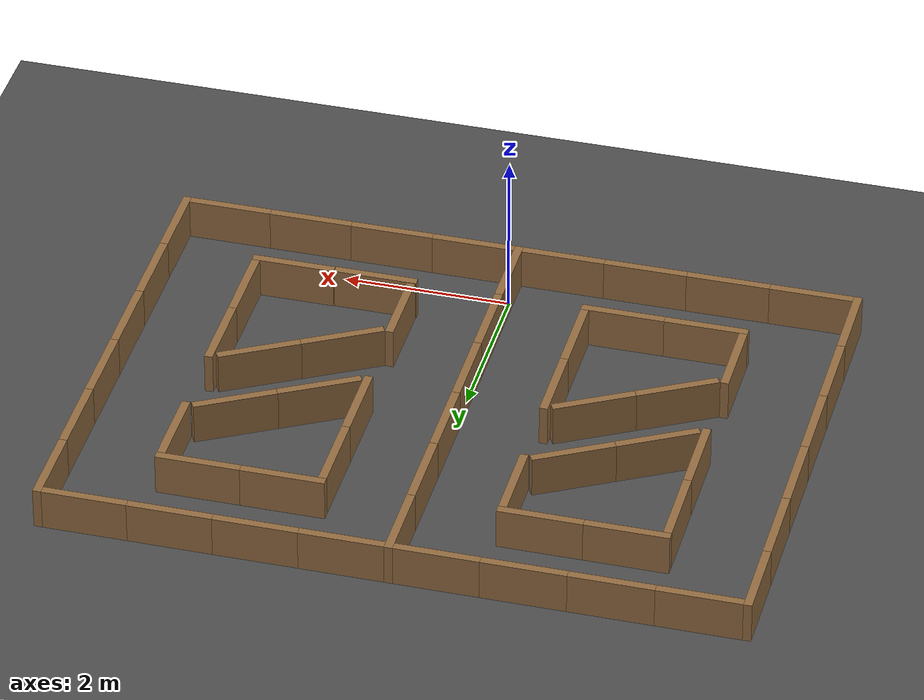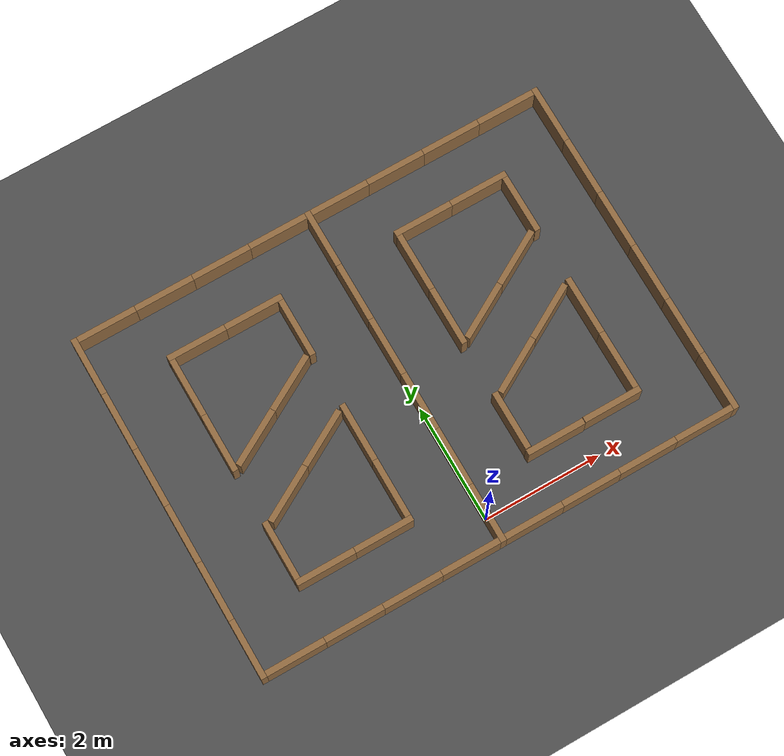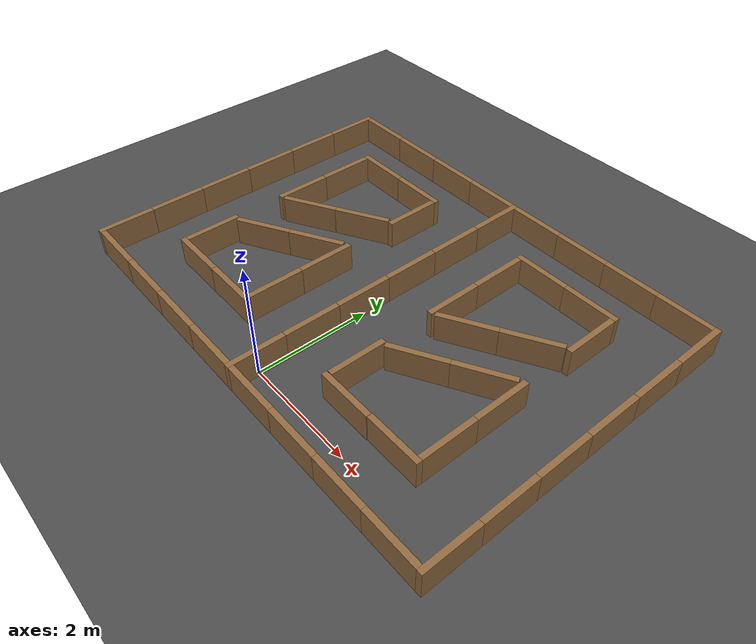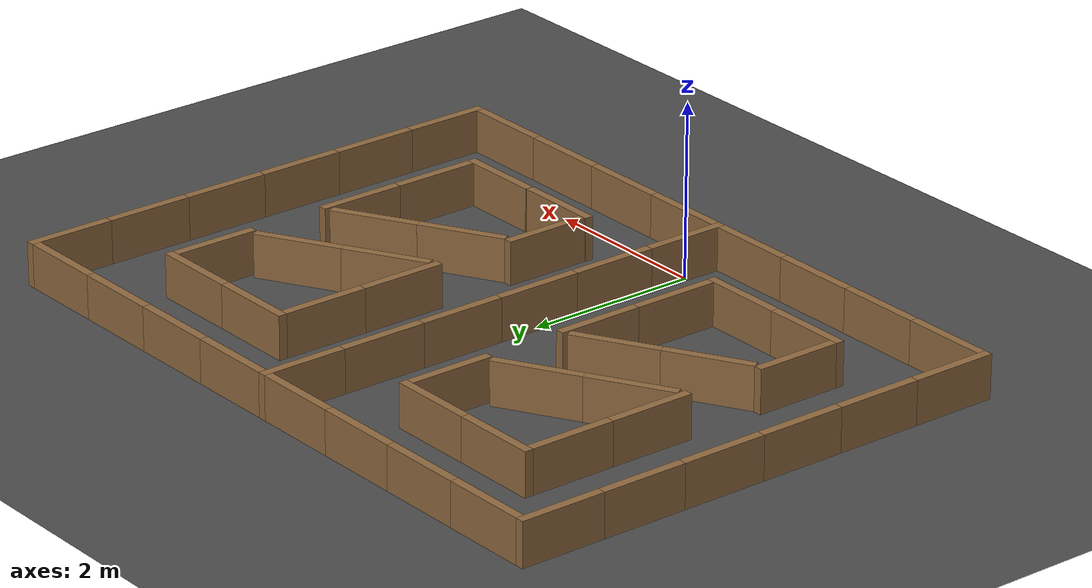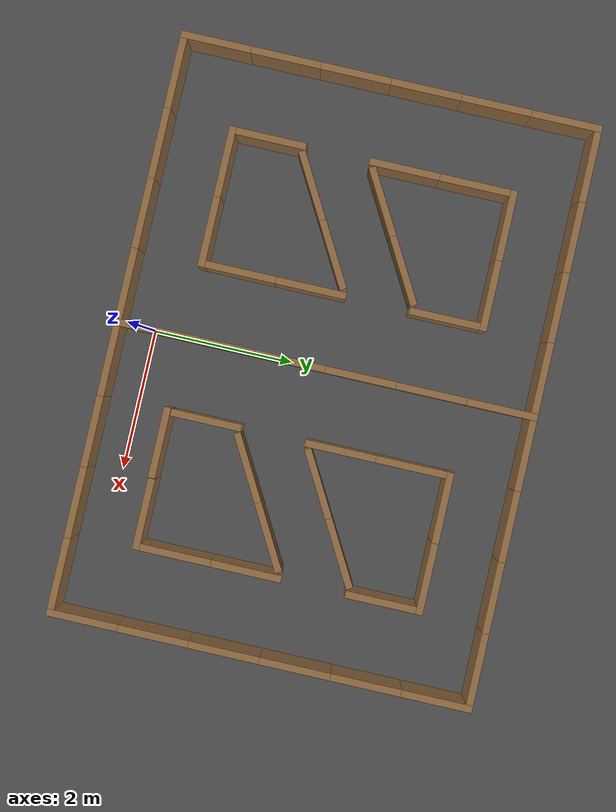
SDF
<sdf version="1.4">
 <world name="maskor_dome_World">
  <model name="papptown_wall8">
   <pose>0.55 5.45 0 0 -0 1.5708</pose>
   <static>1</static>
   <link name="link">
    <pose>0 0 0.25 0 -0 0</pose>
    <collision name="collision"><geometry><box><size>0.1 1 0.5</size></box></geometry></collision>
    <visual name="visual">
     <geometry><box><size>0.1 1 0.5</size></box></geometry>
     <material>
      <ambient>0.5 0.5 0.5 1</ambient>
      <diffuse>0.57 0.417 0.25 1</diffuse>
      <specular>0.1 0.1 0.1 1</specular>
     </material>
    </visual>
    <velocity_decay><linear>0</linear><angular>0</angular></velocity_decay>
   </link>
  </model>
  <light name="sun" type="directional">
   <pose>0 0 10 0 -0 0</pose>
   <diffuse>0.8 0.8 0.8 1</diffuse>
   <specular>0.2 0.2 0.2 1</specular>
   <attenuation>
    <range>1000</range>
    <constant>0.9</constant>
    <linear>0.01</linear>
    <quadratic>0.001</quadratic>
   </attenuation>
   <direction>-0.5 0.1 -0.9</direction>
  </light>
  <model name="papptown_wall1">
   <static>1</static>
   <link name="link">
    <pose>0 0 0.25 0 -0 0</pose>
    <collision name="collision"><geometry><box><size>0.1 1 0.5</size></box></geometry></collision>
    <visual name="visual">
     <geometry><box><size>0.1 1 0.5</size></box></geometry>
     <material>
      <ambient>0.5 0.5 0.5 1</ambient>
      <diffuse>0.57 0.417 0.25 1</diffuse>
      <specular>0.1 0.1 0.1 1</specular>
      <emissive>0 0 0 0</emissive>
     </material>
    </visual>
    <velocity_decay><linear>0</linear><angular>0</angular></velocity_decay>
   </link>
  </model>
  <model name="papptown_wall25">
   <pose>2.95 2.05 0 0 -0 0</pose>
   <static>1</static>
   <link name="link">
    <pose>0 0 0.25 0 -0 0</pose>
    <collision name="collision"><geometry><box><size>0.1 1 0.5</size></box></geometry></collision>
    <visual name="visual">
     <geometry><box><size>0.1 1 0.5</size></box></geometry>
     <material>
      <ambient>0.5 0.5 0.5 1</ambient>
      <diffuse>0.57 0.417 0.25 1</diffuse>
      <specular>0.1 0.1 0.1 1</specular>
      <emissive>0 0 0 0</emissive>
     </material>
    </visual>
    <velocity_decay><linear>0</linear><angular>0</angular></velocity_decay>
   </link>
  </model>
  <model name="papptown_wall2">
   <pose>0 1 0 0 -0 0</pose>
   <static>1</static>
   <link name="link">
    <pose>0 0 0.25 0 -0 0</pose>
    <collision name="collision"><geometry><box><size>0.1 1 0.5</size></box></geometry></collision>
    <visual name="visual">
     <geometry><box><size>0.1 1 0.5</size></box></geometry>
     <material>
      <ambient>0.5 0.5 0.5 1</ambient>
      <diffuse>0.57 0.417 0.25 1</diffuse>
      <specular>0.1 0.1 0.1 1</specular>
      <emissive>0 0 0 0</emissive>
     </material>
    </visual>
    <velocity_decay><linear>0</linear><angular>0</angular></velocity_decay>
   </link>
  </model>
  <model name="papptown_wall3">
   <pose>0 2 0 0 -0 0</pose>
   <static>1</static>
   <link name="link">
    <pose>0 0 0.25 0 -0 0</pose>
    <collision name="collision"><geometry><box><size>0.1 1 0.5</size></box></geometry></collision>
    <visual name="visual">
     <geometry><box><size>0.1 1 0.5</size></box></geometry>
     <material>
      <ambient>0.5 0.5 0.5 1</ambient>
      <diffuse>0.57 0.417 0.25 1</diffuse>
      <specular>0.1 0.1 0.1 1</specular>
      <emissive>0 0 0 0</emissive>
     </material>
    </visual>
    <velocity_decay><linear>0</linear><angular>0</angular></velocity_decay>
   </link>
  </model>
  <model name="papptown_wall4">
   <pose>0 3 0 0 -0 0</pose>
   <static>1</static>
   <link name="link">
    <pose>0 0 0.25 0 -0 0</pose>
    <collision name="collision"><geometry><box><size>0.1 1 0.5</size></box></geometry></collision>
    <visual name="visual">
     <geometry><box><size>0.1 1 0.5</size></box></geometry>
     <material>
      <ambient>0.5 0.5 0.5 1</ambient>
      <diffuse>0.57 0.417 0.25 1</diffuse>
      <specular>0.1 0.1 0.1 1</specular>
      <emissive>0 0 0 0</emissive>
     </material>
    </visual>
    <velocity_decay><linear>0</linear><angular>0</angular></velocity_decay>
   </link>
  </model>
  <model name="papptown_wall5">
   <pose>0 4 0 0 -0 0</pose>
   <static>1</static>
   <link name="link">
    <pose>0 0 0.25 0 -0 0</pose>
    <collision name="collision"><geometry><box><size>0.1 1 0.5</size></box></geometry></collision>
    <visual name="visual">
     <geometry><box><size>0.1 1 0.5</size></box></geometry>
     <material>
      <ambient>0.5 0.5 0.5 1</ambient>
      <diffuse>0.57 0.417 0.25 1</diffuse>
      <specular>0.1 0.1 0.1 1</specular>
      <emissive>0 0 0 0</emissive>
     </material>
    </visual>
    <velocity_decay><linear>0</linear><angular>0</angular></velocity_decay>
   </link>
  </model>
  <model name="papptown_wall6">
   <pose>0 5 0 0 -0 0</pose>
   <static>1</static>
   <link name="link">
    <pose>0 0 0.25 0 -0 0</pose>
    <collision name="collision"><geometry><box><size>0.1 1 0.5</size></box></geometry></collision>
    <visual name="visual">
     <geometry><box><size>0.1 1 0.5</size></box></geometry>
     <material>
      <ambient>0.5 0.5 0.5 1</ambient>
      <diffuse>0.57 0.417 0.25 1</diffuse>
      <specular>0.1 0.1 0.1 1</specular>
      <emissive>0 0 0 0</emissive>
     </material>
    </visual>
    <velocity_decay><linear>0</linear><angular>0</angular></velocity_decay>
   </link>
  </model>
  <model name="papptown_wall9">
   <pose>1.55 5.45 0 0 -0 1.5708</pose>
   <static>1</static>
   <link name="link">
    <pose>0 0 0.25 0 -0 0</pose>
    <collision name="collision"><geometry><box><size>0.1 1 0.5</size></box></geometry></collision>
    <visual name="visual">
     <geometry><box><size>0.1 1 0.5</size></box></geometry>
     <material>
      <ambient>0.5 0.5 0.5 1</ambient>
      <diffuse>0.57 0.417 0.25 1</diffuse>
      <specular>0.1 0.1 0.1 1</specular>
      <emissive>0 0 0 0</emissive>
     </material>
    </visual>
    <velocity_decay><linear>0</linear><angular>0</angular></velocity_decay>
   </link>
  </model>
  <model name="papptown_wall10">
   <pose>2.55 5.45 0 0 -0 1.5708</pose>
   <static>1</static>
   <link name="link">
    <pose>0 0 0.25 0 -0 0</pose>
    <collision name="collision"><geometry><box><size>0.1 1 0.5</size></box></geometry></collision>
    <visual name="visual">
     <geometry><box><size>0.1 1 0.5</size></box></geometry>
     <material>
      <ambient>0.5 0.5 0.5 1</ambient>
      <diffuse>0.57 0.417 0.25 1</diffuse>
      <specular>0.1 0.1 0.1 1</specular>
     </material>
    </visual>
    <velocity_decay><linear>0</linear><angular>0</angular></velocity_decay>
   </link>
  </model>
  <model name="papptown_wall11">
   <pose>3.55 5.45 0 0 -0 1.5708</pose>
   <static>1</static>
   <link name="link">
    <pose>0 0 0.25 0 -0 0</pose>
    <collision name="collision"><geometry><box><size>0.1 1 0.5</size></box></geometry></collision>
    <visual name="visual">
     <geometry><box><size>0.1 1 0.5</size></box></geometry>
     <material>
      <ambient>0.5 0.5 0.5 1</ambient>
      <diffuse>0.57 0.417 0.25 1</diffuse>
      <specular>0.1 0.1 0.1 1</specular>
      <emissive>0 0 0 0</emissive>
     </material>
    </visual>
    <velocity_decay><linear>0</linear><angular>0</angular></velocity_decay>
   </link>
  </model>
  <model name="papptown_wall13">
   <pose>4.1 5 0 0 -0 0</pose>
   <static>1</static>
   <link name="link">
    <pose>0 0 0.25 0 -0 0</pose>
    <collision name="collision"><geometry><box><size>0.1 1 0.5</size></box></geometry></collision>
    <visual name="visual">
     <geometry><box><size>0.1 1 0.5</size></box></geometry>
     <material>
      <ambient>0.5 0.5 0.5 1</ambient>
      <diffuse>0.57 0.417 0.25 1</diffuse>
      <specular>0.1 0.1 0.1 1</specular>
      <emissive>0 0 0 0</emissive>
     </material>
    </visual>
    <velocity_decay><linear>0</linear><angular>0</angular></velocity_decay>
   </link>
  </model>
  <model name="papptown_wall14">
   <pose>4.1 4 0 0 -0 0</pose>
   <static>1</static>
   <link name="link">
    <pose>0 0 0.25 0 -0 0</pose>
    <collision name="collision"><geometry><box><size>0.1 1 0.5</size></box></geometry></collision>
    <visual name="visual">
     <geometry><box><size>0.1 1 0.5</size></box></geometry>
     <material>
      <ambient>0.5 0.5 0.5 1</ambient>
      <diffuse>0.57 0.417 0.25 1</diffuse>
      <specular>0.1 0.1 0.1 1</specular>
      <emissive>0 0 0 0</emissive>
     </material>
    </visual>
    <velocity_decay><linear>0</linear><angular>0</angular></velocity_decay>
   </link>
  </model>
  <model name="papptown_wall15">
   <pose>4.1 3 0 0 -0 0</pose>
   <static>1</static>
   <link name="link">
    <pose>0 0 0.25 0 -0 0</pose>
    <collision name="collision"><geometry><box><size>0.1 1 0.5</size></box></geometry></collision>
    <visual name="visual">
     <geometry><box><size>0.1 1 0.5</size></box></geometry>
     <material>
      <ambient>0.5 0.5 0.5 1</ambient>
      <diffuse>0.57 0.417 0.25 1</diffuse>
      <specular>0.1 0.1 0.1 1</specular>
      <emissive>0 0 0 0</emissive>
     </material>
    </visual>
    <velocity_decay><linear>0</linear><angular>0</angular></velocity_decay>
   </link>
  </model>
  <model name="papptown_wall16">
   <pose>4.1 2 0 0 -0 0</pose>
   <static>1</static>
   <link name="link">
    <pose>0 0 0.25 0 -0 0</pose>
    <collision name="collision"><geometry><box><size>0.1 1 0.5</size></box></geometry></collision>
    <visual name="visual">
     <geometry><box><size>0.1 1 0.5</size></box></geometry>
     <material>
      <ambient>0.5 0.5 0.5 1</ambient>
      <diffuse>0.57 0.417 0.25 1</diffuse>
      <specular>0.1 0.1 0.1 1</specular>
      <emissive>0 0 0 0</emissive>
     </material>
    </visual>
    <velocity_decay><linear>0</linear><angular>0</angular></velocity_decay>
   </link>
  </model>
  <model name="papptown_wall17">
   <pose>4.1 1 0 0 -0 0</pose>
   <static>1</static>
   <link name="link">
    <pose>0 0 0.25 0 -0 0</pose>
    <collision name="collision"><geometry><box><size>0.1 1 0.5</size></box></geometry></collision>
    <visual name="visual">
     <geometry><box><size>0.1 1 0.5</size></box></geometry>
     <material>
      <ambient>0.5 0.5 0.5 1</ambient>
      <diffuse>0.57 0.417 0.25 1</diffuse>
      <specular>0.1 0.1 0.1 1</specular>
      <emissive>0 0 0 0</emissive>
     </material>
    </visual>
    <velocity_decay><linear>0</linear><angular>0</angular></velocity_decay>
   </link>
  </model>
  <model name="papptown_wall18">
   <pose>4.1 0 0 0 -0 0</pose>
   <static>1</static>
   <link name="link">
    <pose>0 0 0.25 0 -0 0</pose>
    <collision name="collision"><geometry><box><size>0.1 1 0.5</size></box></geometry></collision>
    <visual name="visual">
     <geometry><box><size>0.1 1 0.5</size></box></geometry>
     <material>
      <ambient>0.5 0.5 0.5 1</ambient>
      <diffuse>0.57 0.417 0.25 1</diffuse>
      <specular>0.1 0.1 0.1 1</specular>
      <emissive>0 0 0 0</emissive>
     </material>
    </visual>
    <velocity_decay><linear>0</linear><angular>0</angular></velocity_decay>
   </link>
  </model>
  <model name="papptown_wall21">
   <pose>1.55 -0.45 0 0 -0 1.5708</pose>
   <static>1</static>
   <link name="link">
    <pose>0 0 0.25 0 -0 0</pose>
    <collision name="collision"><geometry><box><size>0.1 1 0.5</size></box></geometry></collision>
    <visual name="visual">
     <geometry><box><size>0.1 1 0.5</size></box></geometry>
     <material>
      <ambient>0.5 0.5 0.5 1</ambient>
      <diffuse>0.57 0.417 0.25 1</diffuse>
      <specular>0.1 0.1 0.1 1</specular>
      <emissive>0 0 0 0</emissive>
     </material>
    </visual>
    <velocity_decay><linear>0</linear><angular>0</angular></velocity_decay>
   </link>
  </model>
  <model name="papptown_wall19">
   <pose>3.55 -0.45 0 0 -0 1.5708</pose>
   <static>1</static>
   <link name="link">
    <pose>0 0 0.25 0 -0 0</pose>
    <collision name="collision"><geometry><box><size>0.1 1 0.5</size></box></geometry></collision>
    <visual name="visual">
     <geometry><box><size>0.1 1 0.5</size></box></geometry>
     <material>
      <ambient>0.5 0.5 0.5 1</ambient>
      <diffuse>0.57 0.417 0.25 1</diffuse>
      <specular>0.1 0.1 0.1 1</specular>
      <emissive>0 0 0 0</emissive>
     </material>
    </visual>
    <velocity_decay><linear>0</linear><angular>0</angular></velocity_decay>
   </link>
  </model>
  <model name="papptown_wall20">
   <pose>2.55 -0.45 0 0 -0 1.5708</pose>
   <static>1</static>
   <link name="link">
    <pose>0 0 0.25 0 -0 0</pose>
    <collision name="collision"><geometry><box><size>0.1 1 0.5</size></box></geometry></collision>
    <visual name="visual">
     <geometry><box><size>0.1 1 0.5</size></box></geometry>
     <material>
      <ambient>0.5 0.5 0.5 1</ambient>
      <diffuse>0.57 0.417 0.25 1</diffuse>
      <specular>0.1 0.1 0.1 1</specular>
      <emissive>0 0 0 0</emissive>
     </material>
    </visual>
    <velocity_decay><linear>0</linear><angular>0</angular></velocity_decay>
   </link>
  </model>
  <model name="papptown_wall22">
   <pose>0.55 -0.45 0 0 -0 1.5708</pose>
   <static>1</static>
   <link name="link">
    <pose>0 0 0.25 0 -0 0</pose>
    <collision name="collision"><geometry><box><size>0.1 1 0.5</size></box></geometry></collision>
    <visual name="visual">
     <geometry><box><size>0.1 1 0.5</size></box></geometry>
     <material>
      <ambient>0.5 0.5 0.5 1</ambient>
      <diffuse>0.57 0.417 0.25 1</diffuse>
      <specular>0.1 0.1 0.1 1</specular>
      <emissive>0 0 0 0</emissive>
     </material>
    </visual>
    <velocity_decay><linear>0</linear><angular>0</angular></velocity_decay>
   </link>
  </model>
  <model name="papptown_wall23">
   <pose>1.05 1.05 0 0 -0 0</pose>
   <static>1</static>
   <link name="link">
    <pose>0 0 0.25 0 -0 0</pose>
    <collision name="collision"><geometry><box><size>0.1 1 0.5</size></box></geometry></collision>
    <visual name="visual">
     <geometry><box><size>0.1 1 0.5</size></box></geometry>
     <material>
      <ambient>0.5 0.5 0.5 1</ambient>
      <diffuse>0.57 0.417 0.25 1</diffuse>
      <specular>0.1 0.1 0.1 1</specular>
      <emissive>0 0 0 0</emissive>
     </material>
    </visual>
    <velocity_decay><linear>0</linear><angular>0</angular></velocity_decay>
   </link>
  </model>
  <model name="papptown_wall24">
   <pose>2.95 1.05 0 0 -0 0</pose>
   <static>1</static>
   <link name="link">
    <pose>0 0 0.25 0 -0 0</pose>
    <collision name="collision"><geometry><box><size>0.1 1 0.5</size></box></geometry></collision>
    <visual name="visual">
     <geometry><box><size>0.1 1 0.5</size></box></geometry>
     <material>
      <ambient>0.5 0.5 0.5 1</ambient>
      <diffuse>0.57 0.417 0.25 1</diffuse>
      <specular>0.1 0.1 0.1 1</specular>
      <emissive>0 0 0 0</emissive>
     </material>
    </visual>
    <velocity_decay><linear>0</linear><angular>0</angular></velocity_decay>
   </link>
  </model>
  <model name="papptown_wall26">
   <pose>2.95 3.95 0 0 -0 0</pose>
   <static>1</static>
   <link name="link">
    <pose>0 0 0.25 0 -0 0</pose>
    <collision name="collision"><geometry><box><size>0.1 1 0.5</size></box></geometry></collision>
    <visual name="visual">
     <geometry><box><size>0.1 1 0.5</size></box></geometry>
     <material>
      <ambient>0.5 0.5 0.5 1</ambient>
      <diffuse>0.57 0.417 0.25 1</diffuse>
      <specular>0.1 0.1 0.1 1</specular>
      <emissive>0 0 0 0</emissive>
     </material>
    </visual>
    <velocity_decay><linear>0</linear><angular>0</angular></velocity_decay>
   </link>
  </model>
  <model name="papptown_wall28">
   <pose>2.5 0.5 0 0 -0 1.5708</pose>
   <static>1</static>
   <link name="link">
    <pose>0 0 0.25 0 -0 0</pose>
    <collision name="collision"><geometry><box><size>0.1 1 0.5</size></box></geometry></collision>
    <visual name="visual">
     <geometry><box><size>0.1 1 0.5</size></box></geometry>
     <material>
      <ambient>0.5 0.5 0.5 1</ambient>
      <diffuse>0.57 0.417 0.25 1</diffuse>
      <specular>0.1 0.1 0.1 1</specular>
      <emissive>0 0 0 0</emissive>
     </material>
    </visual>
    <velocity_decay><linear>0</linear><angular>0</angular></velocity_decay>
   </link>
  </model>
  <model name="papptown_wall29">
   <pose>1.5 4.5 0 0 -0 1.5708</pose>
   <static>1</static>
   <link name="link">
    <pose>0 0 0.25 0 -0 0</pose>
    <collision name="collision"><geometry><box><size>0.1 1 0.5</size></box></geometry></collision>
    <visual name="visual">
     <geometry><box><size>0.1 1 0.5</size></box></geometry>
     <material>
      <ambient>0.5 0.5 0.5 1</ambient>
      <diffuse>0.57 0.417 0.25 1</diffuse>
      <specular>0.1 0.1 0.1 1</specular>
      <emissive>0 0 0 0</emissive>
     </material>
    </visual>
    <velocity_decay><linear>0</linear><angular>0</angular></velocity_decay>
   </link>
  </model>
  <model name="papptown_wall34">
   <pose>2.43 2.245 0 0 0 -1.055</pose>
   <static>1</static>
   <link name="link">
    <pose>0 0 0.25 0 -0 0</pose>
    <collision name="collision"><geometry><box><size>0.1 1 0.5</size></box></geometry></collision>
    <visual name="visual">
     <geometry><box><size>0.1 1 0.5</size></box></geometry>
     <material>
      <ambient>0.5 0.5 0.5 1</ambient>
      <diffuse>0.57 0.417 0.25 1</diffuse>
      <specular>0.1 0.1 0.1 1</specular>
      <emissive>0 0 0 0</emissive>
     </material>
    </visual>
    <velocity_decay><linear>0</linear><angular>0</angular></velocity_decay>
   </link>
  </model>
  <model name="papptown_wall33">
   <pose>1.5603 1.7518 0 0 0 -1.055</pose>
   <static>1</static>
   <link name="link">
    <pose>0 0 0.25 0 -0 0</pose>
    <collision name="collision"><geometry><box><size>0.1 1 0.5</size></box></geometry></collision>
    <visual name="visual">
     <geometry><box><size>0.1 1 0.5</size></box></geometry>
     <material>
      <ambient>0.5 0.5 0.5 1</ambient>
      <diffuse>0.57 0.417 0.25 1</diffuse>
      <specular>0.1 0.1 0.1 1</specular>
      <emissive>0 0 0 0</emissive>
     </material>
    </visual>
    <velocity_decay><linear>0</linear><angular>0</angular></velocity_decay>
   </link>
  </model>
  <model name="papptown_wall32">
   <pose>1.05 3.95 0 0 -0 0</pose>
   <static>1</static>
   <link name="link">
    <pose>0 0 0.25 0 -0 0</pose>
    <collision name="collision"><geometry><box><size>0.1 1 0.5</size></box></geometry></collision>
    <visual name="visual">
     <geometry><box><size>0.1 1 0.5</size></box></geometry>
     <material>
      <ambient>0.5 0.5 0.5 1</ambient>
      <diffuse>0.57 0.417 0.25 1</diffuse>
      <specular>0.1 0.1 0.1 1</specular>
      <emissive>0 0 0 0</emissive>
     </material>
    </visual>
    <velocity_decay><linear>0</linear><angular>0</angular></velocity_decay>
   </link>
  </model>
  <model name="papptown_wall30">
   <pose>2.5 4.5 0 0 -0 1.5708</pose>
   <static>1</static>
   <link name="link">
    <pose>0 0 0.25 0 -0 0</pose>
    <collision name="collision"><geometry><box><size>0.1 1 0.5</size></box></geometry></collision>
    <visual name="visual">
     <geometry><box><size>0.1 1 0.5</size></box></geometry>
     <material>
      <ambient>0.5 0.5 0.5 1</ambient>
      <diffuse>0.57 0.417 0.25 1</diffuse>
      <specular>0.1 0.1 0.1 1</specular>
      <emissive>0 0 0 0</emissive>
     </material>
    </visual>
    <velocity_decay><linear>0</linear><angular>0</angular></velocity_decay>
   </link>
  </model>
  <model name="papptown_wall31">
   <pose>1.05 2.95 0 0 -0 0</pose>
   <static>1</static>
   <link name="link">
    <pose>0 0 0.25 0 -0 0</pose>
    <collision name="collision"><geometry><box><size>0.1 1 0.5</size></box></geometry></collision>
    <visual name="visual">
     <geometry><box><size>0.1 1 0.5</size></box></geometry>
     <material>
      <ambient>0.5 0.5 0.5 1</ambient>
      <diffuse>0.57 0.417 0.25 1</diffuse>
      <specular>0.1 0.1 0.1 1</specular>
      <emissive>0 0 0 0</emissive>
     </material>
    </visual>
    <velocity_decay><linear>0</linear><angular>0</angular></velocity_decay>
   </link>
  </model>
  <model name="papptown_wall27">
   <pose>1.49404 0.492306 0 0 -0 1.5708</pose>
   <static>1</static>
   <link name="link">
    <pose>0 0 0.25 0 -0 0</pose>
    <collision name="collision"><geometry><box><size>0.1 1 0.5</size></box></geometry></collision>
    <visual name="visual">
     <geometry><box><size>0.1 1 0.5</size></box></geometry>
     <material>
      <ambient>0.5 0.5 0.5 1</ambient>
      <diffuse>0.57 0.417 0.25 1</diffuse>
      <specular>0.1 0.1 0.1 1</specular>
      <emissive>0 0 0 0</emissive>
     </material>
    </visual>
    <velocity_decay><linear>0</linear><angular>0</angular></velocity_decay>
   </link>
  </model>
  <model name="papptown_wall35">
   <pose>2.43 3.245 0 0 0 -1.055</pose>
   <static>1</static>
   <link name="link">
    <pose>0 0 0.25 0 -0 0</pose>
    <collision name="collision"><geometry><box><size>0.1 1 0.5</size></box></geometry></collision>
    <visual name="visual">
     <geometry><box><size>0.1 1 0.5</size></box></geometry>
     <material>
      <ambient>0.5 0.5 0.5 1</ambient>
      <diffuse>0.57 0.417 0.25 1</diffuse>
      <specular>0.1 0.1 0.1 1</specular>
      <emissive>0 0 0 0</emissive>
     </material>
    </visual>
    <velocity_decay><linear>0</linear><angular>0</angular></velocity_decay>
   </link>
  </model>
  <model name="papptown_wall36">
   <pose>1.5603 2.7518 0 0 0 -1.055</pose>
   <static>1</static>
   <link name="link">
    <pose>0 0 0.25 0 -0 0</pose>
    <collision name="collision"><geometry><box><size>0.1 1 0.5</size></box></geometry></collision>
    <visual name="visual">
     <geometry><box><size>0.1 1 0.5</size></box></geometry>
     <material>
      <ambient>0.5 0.5 0.5 1</ambient>
      <diffuse>0.57 0.417 0.25 1</diffuse>
      <specular>0.1 0.1 0.1 1</specular>
      <emissive>0 0 0 0</emissive>
     </material>
    </visual>
    <velocity_decay><linear>0</linear><angular>0</angular></velocity_decay>
   </link>
  </model>
  <model name="papptown_wall37">
   <pose>-3.55 5.45 0 0 -0 1.5708</pose>
   <static>1</static>
   <link name="link">
    <pose>0 0 0.25 0 -0 0</pose>
    <collision name="collision"><geometry><box><size>0.1 1 0.5</size></box></geometry></collision>
    <visual name="visual">
     <geometry><box><size>0.1 1 0.5</size></box></geometry>
     <material>
      <ambient>0.5 0.5 0.5 1</ambient>
      <diffuse>0.57 0.417 0.25 1</diffuse>
      <specular>0.1 0.1 0.1 1</specular>
      <emissive>0 0 0 0</emissive>
     </material>
    </visual>
    <velocity_decay><linear>0</linear><angular>0</angular></velocity_decay>
   </link>
  </model>
  <model name="papptown_wall38">
   <pose>-2.55 5.45 0 0 -0 1.5708</pose>
   <static>1</static>
   <link name="link">
    <pose>0 0 0.25 0 -0 0</pose>
    <collision name="collision"><geometry><box><size>0.1 1 0.5</size></box></geometry></collision>
    <visual name="visual">
     <geometry><box><size>0.1 1 0.5</size></box></geometry>
     <material>
      <ambient>0.5 0.5 0.5 1</ambient>
      <diffuse>0.57 0.417 0.25 1</diffuse>
      <specular>0.1 0.1 0.1 1</specular>
      <emissive>0 0 0 0</emissive>
     </material>
    </visual>
    <velocity_decay><linear>0</linear><angular>0</angular></velocity_decay>
   </link>
  </model>
  <model name="papptown_wall39">
   <pose>-1.55 5.45 0 0 -0 1.5708</pose>
   <static>1</static>
   <link name="link">
    <pose>0 0 0.25 0 -0 0</pose>
    <collision name="collision"><geometry><box><size>0.1 1 0.5</size></box></geometry></collision>
    <visual name="visual">
     <geometry><box><size>0.1 1 0.5</size></box></geometry>
     <material>
      <ambient>0.5 0.5 0.5 1</ambient>
      <diffuse>0.57 0.417 0.25 1</diffuse>
      <specular>0.1 0.1 0.1 1</specular>
      <emissive>0 0 0 0</emissive>
     </material>
    </visual>
    <velocity_decay><linear>0</linear><angular>0</angular></velocity_decay>
   </link>
  </model>
  <model name="papptown_wall40">
   <pose>-0.55 5.45 0 0 -0 1.5708</pose>
   <static>1</static>
   <link name="link">
    <pose>0 0 0.25 0 -0 0</pose>
    <collision name="collision"><geometry><box><size>0.1 1 0.5</size></box></geometry></collision>
    <visual name="visual">
     <geometry><box><size>0.1 1 0.5</size></box></geometry>
     <material>
      <ambient>0.5 0.5 0.5 1</ambient>
      <diffuse>0.57 0.417 0.25 1</diffuse>
      <specular>0.1 0.1 0.1 1</specular>
      <emissive>0 0 0 0</emissive>
     </material>
    </visual>
    <velocity_decay><linear>0</linear><angular>0</angular></velocity_decay>
   </link>
  </model>
  <model name="papptown_wall47">
   <pose>-0.55 -0.45 0 0 -0 1.5708</pose>
   <static>1</static>
   <link name="link">
    <pose>0 0 0.25 0 -0 0</pose>
    <collision name="collision"><geometry><box><size>0.1 1 0.5</size></box></geometry></collision>
    <visual name="visual">
     <geometry><box><size>0.1 1 0.5</size></box></geometry>
     <material>
      <ambient>0.5 0.5 0.5 1</ambient>
      <diffuse>0.57 0.417 0.25 1</diffuse>
      <specular>0.1 0.1 0.1 1</specular>
      <emissive>0 0 0 0</emissive>
     </material>
    </visual>
    <velocity_decay><linear>0</linear><angular>0</angular></velocity_decay>
   </link>
  </model>
  <model name="papptown_wall48">
   <pose>-1.55 -0.45 0 0 -0 1.5708</pose>
   <static>1</static>
   <link name="link">
    <pose>0 0 0.25 0 -0 0</pose>
    <collision name="collision"><geometry><box><size>0.1 1 0.5</size></box></geometry></collision>
    <visual name="visual">
     <geometry><box><size>0.1 1 0.5</size></box></geometry>
     <material>
      <ambient>0.5 0.5 0.5 1</ambient>
      <diffuse>0.57 0.417 0.25 1</diffuse>
      <specular>0.1 0.1 0.1 1</specular>
      <emissive>0 0 0 0</emissive>
     </material>
    </visual>
    <velocity_decay><linear>0</linear><angular>0</angular></velocity_decay>
   </link>
  </model>
  <model name="papptown_wall52">
   <pose>-1.05 2.05 0 0 -0 0</pose>
   <static>1</static>
   <link name="link">
    <pose>0 0 0.25 0 -0 0</pose>
    <collision name="collision"><geometry><box><size>0.1 1 0.5</size></box></geometry></collision>
    <visual name="visual">
     <geometry><box><size>0.1 1 0.5</size></box></geometry>
     <material>
      <ambient>0.5 0.5 0.5 1</ambient>
      <diffuse>0.57 0.417 0.25 1</diffuse>
      <specular>0.1 0.1 0.1 1</specular>
      <emissive>0 0 0 0</emissive>
     </material>
    </visual>
    <velocity_decay><linear>0</linear><angular>0</angular></velocity_decay>
   </link>
  </model>
  <model name="papptown_wall49">
   <pose>-2.55 -0.45 0 0 -0 1.5708</pose>
   <static>1</static>
   <link name="link">
    <pose>0 0 0.25 0 -0 0</pose>
    <collision name="collision"><geometry><box><size>0.1 1 0.5</size></box></geometry></collision>
    <visual name="visual">
     <geometry><box><size>0.1 1 0.5</size></box></geometry>
     <material>
      <ambient>0.5 0.5 0.5 1</ambient>
      <diffuse>0.57 0.417 0.25 1</diffuse>
      <specular>0.1 0.1 0.1 1</specular>
      <emissive>0 0 0 0</emissive>
     </material>
    </visual>
    <velocity_decay><linear>0</linear><angular>0</angular></velocity_decay>
   </link>
  </model>
  <model name="papptown_wall56">
   <pose>-2.5 4.5 0 0 -0 1.5708</pose>
   <static>1</static>
   <link name="link">
    <pose>0 0 0.25 0 -0 0</pose>
    <collision name="collision"><geometry><box><size>0.1 1 0.5</size></box></geometry></collision>
    <visual name="visual">
     <geometry><box><size>0.1 1 0.5</size></box></geometry>
     <material>
      <ambient>0.5 0.5 0.5 1</ambient>
      <diffuse>0.57 0.417 0.25 1</diffuse>
      <specular>0.1 0.1 0.1 1</specular>
      <emissive>0 0 0 0</emissive>
     </material>
    </visual>
    <velocity_decay><linear>0</linear><angular>0</angular></velocity_decay>
   </link>
  </model>
  <model name="papptown_wall50">
   <pose>-3.55 -0.45 0 0 -0 1.5708</pose>
   <static>1</static>
   <link name="link">
    <pose>0 0 0.25 0 -0 0</pose>
    <collision name="collision"><geometry><box><size>0.1 1 0.5</size></box></geometry></collision>
    <visual name="visual">
     <geometry><box><size>0.1 1 0.5</size></box></geometry>
     <material>
      <ambient>0.5 0.5 0.5 1</ambient>
      <diffuse>0.57 0.417 0.25 1</diffuse>
      <specular>0.1 0.1 0.1 1</specular>
      <emissive>0 0 0 0</emissive>
     </material>
    </visual>
    <velocity_decay><linear>0</linear><angular>0</angular></velocity_decay>
   </link>
  </model>
  <model name="papptown_wall51">
   <pose>-2.95 1.05 0 0 -0 0</pose>
   <static>1</static>
   <link name="link">
    <pose>0 0 0.25 0 -0 0</pose>
    <collision name="collision"><geometry><box><size>0.1 1 0.5</size></box></geometry></collision>
    <visual name="visual">
     <geometry><box><size>0.1 1 0.5</size></box></geometry>
     <material>
      <ambient>0.5 0.5 0.5 1</ambient>
      <diffuse>0.57 0.417 0.25 1</diffuse>
      <specular>0.1 0.1 0.1 1</specular>
      <emissive>0 0 0 0</emissive>
     </material>
    </visual>
    <velocity_decay><linear>0</linear><angular>0</angular></velocity_decay>
   </link>
  </model>
  <model name="papptown_wall53">
   <pose>-1.05 1.05 0 0 -0 0</pose>
   <static>1</static>
   <link name="link">
    <pose>0 0 0.25 0 -0 0</pose>
    <collision name="collision"><geometry><box><size>0.1 1 0.5</size></box></geometry></collision>
    <visual name="visual">
     <geometry><box><size>0.1 1 0.5</size></box></geometry>
     <material>
      <ambient>0.5 0.5 0.5 1</ambient>
      <diffuse>0.57 0.417 0.25 1</diffuse>
      <specular>0.1 0.1 0.1 1</specular>
      <emissive>0 0 0 0</emissive>
     </material>
    </visual>
    <velocity_decay><linear>0</linear><angular>0</angular></velocity_decay>
   </link>
  </model>
  <model name="papptown_wall55">
   <pose>-1.5 0.5 0 0 -0 1.5708</pose>
   <static>1</static>
   <link name="link">
    <pose>0 0 0.25 0 -0 0</pose>
    <collision name="collision"><geometry><box><size>0.1 1 0.5</size></box></geometry></collision>
    <visual name="visual">
     <geometry><box><size>0.1 1 0.5</size></box></geometry>
     <material>
      <ambient>0.5 0.5 0.5 1</ambient>
      <diffuse>0.57 0.417 0.25 1</diffuse>
      <specular>0.1 0.1 0.1 1</specular>
      <emissive>0 0 0 0</emissive>
     </material>
    </visual>
    <velocity_decay><linear>0</linear><angular>0</angular></velocity_decay>
   </link>
  </model>
  <model name="papptown_wall54">
   <pose>-1.05 3.95 0 0 -0 0</pose>
   <static>1</static>
   <link name="link">
    <pose>0 0 0.25 0 -0 0</pose>
    <collision name="collision"><geometry><box><size>0.1 1 0.5</size></box></geometry></collision>
    <visual name="visual">
     <geometry><box><size>0.1 1 0.5</size></box></geometry>
     <material>
      <ambient>0.5 0.5 0.5 1</ambient>
      <diffuse>0.57 0.417 0.25 1</diffuse>
      <specular>0.1 0.1 0.1 1</specular>
      <emissive>0 0 0 0</emissive>
     </material>
    </visual>
    <velocity_decay><linear>0</linear><angular>0</angular></velocity_decay>
   </link>
  </model>
  <model name="papptown_wall57">
   <pose>-1.57 2.245 0 0 0 -1.055</pose>
   <static>1</static>
   <link name="link">
    <pose>0 0 0.25 0 -0 0</pose>
    <collision name="collision"><geometry><box><size>0.1 1 0.5</size></box></geometry></collision>
    <visual name="visual">
     <geometry><box><size>0.1 1 0.5</size></box></geometry>
     <material>
      <ambient>0.5 0.5 0.5 1</ambient>
      <diffuse>0.57 0.417 0.25 1</diffuse>
      <specular>0.1 0.1 0.1 1</specular>
      <emissive>0 0 0 0</emissive>
     </material>
    </visual>
    <velocity_decay><linear>0</linear><angular>0</angular></velocity_decay>
   </link>
  </model>
  <model name="papptown_wall61">
   <pose>-2.95 3.95 0 0 -0 0</pose>
   <static>1</static>
   <link name="link">
    <pose>0 0 0.25 0 -0 0</pose>
    <collision name="collision"><geometry><box><size>0.1 1 0.5</size></box></geometry></collision>
    <visual name="visual">
     <geometry><box><size>0.1 1 0.5</size></box></geometry>
     <material>
      <ambient>0.5 0.5 0.5 1</ambient>
      <diffuse>0.57 0.417 0.25 1</diffuse>
      <specular>0.1 0.1 0.1 1</specular>
      <emissive>0 0 0 0</emissive>
     </material>
    </visual>
    <velocity_decay><linear>0</linear><angular>0</angular></velocity_decay>
   </link>
  </model>
  <model name="papptown_wall58">
   <pose>-2.4397 1.7518 0 0 0 -1.055</pose>
   <static>1</static>
   <link name="link">
    <pose>0 0 0.25 0 -0 0</pose>
    <collision name="collision"><geometry><box><size>0.1 1 0.5</size></box></geometry></collision>
    <visual name="visual">
     <geometry><box><size>0.1 1 0.5</size></box></geometry>
     <material>
      <ambient>0.5 0.5 0.5 1</ambient>
      <diffuse>0.57 0.417 0.25 1</diffuse>
      <specular>0.1 0.1 0.1 1</specular>
      <emissive>0 0 0 0</emissive>
     </material>
    </visual>
    <velocity_decay><linear>0</linear><angular>0</angular></velocity_decay>
   </link>
  </model>
  <model name="papptown_wall59">
   <pose>-1.5 4.5 0 0 -0 1.5708</pose>
   <static>1</static>
   <link name="link">
    <pose>0 0 0.25 0 -0 0</pose>
    <collision name="collision"><geometry><box><size>0.1 1 0.5</size></box></geometry></collision>
    <visual name="visual">
     <geometry><box><size>0.1 1 0.5</size></box></geometry>
     <material>
      <ambient>0.5 0.5 0.5 1</ambient>
      <diffuse>0.57 0.417 0.25 1</diffuse>
      <specular>0.1 0.1 0.1 1</specular>
      <emissive>0 0 0 0</emissive>
     </material>
    </visual>
    <velocity_decay><linear>0</linear><angular>0</angular></velocity_decay>
   </link>
  </model>
  <model name="papptown_wall60">
   <pose>-2.95 2.95 0 0 -0 0</pose>
   <static>1</static>
   <link name="link">
    <pose>0 0 0.25 0 -0 0</pose>
    <collision name="collision"><geometry><box><size>0.1 1 0.5</size></box></geometry></collision>
    <visual name="visual">
     <geometry><box><size>0.1 1 0.5</size></box></geometry>
     <material>
      <ambient>0.5 0.5 0.5 1</ambient>
      <diffuse>0.57 0.417 0.25 1</diffuse>
      <specular>0.1 0.1 0.1 1</specular>
      <emissive>0 0 0 0</emissive>
     </material>
    </visual>
    <velocity_decay><linear>0</linear><angular>0</angular></velocity_decay>
   </link>
  </model>
  <model name="papptown_wall62">
   <pose>-2.5 0.5 0 0 -0 1.5708</pose>
   <static>1</static>
   <link name="link">
    <pose>0 0 0.25 0 -0 0</pose>
    <collision name="collision"><geometry><box><size>0.1 1 0.5</size></box></geometry></collision>
    <visual name="visual">
     <geometry><box><size>0.1 1 0.5</size></box></geometry>
     <material>
      <ambient>0.5 0.5 0.5 1</ambient>
      <diffuse>0.57 0.417 0.25 1</diffuse>
      <specular>0.1 0.1 0.1 1</specular>
      <emissive>0 0 0 0</emissive>
     </material>
    </visual>
    <velocity_decay><linear>0</linear><angular>0</angular></velocity_decay>
   </link>
  </model>
  <model name="papptown_wall63">
   <pose>-1.57 3.245 0 0 0 -1.055</pose>
   <static>1</static>
   <link name="link">
    <pose>0 0 0.25 0 -0 0</pose>
    <collision name="collision"><geometry><box><size>0.1 1 0.5</size></box></geometry></collision>
    <visual name="visual">
     <geometry><box><size>0.1 1 0.5</size></box></geometry>
     <material>
      <ambient>0.5 0.5 0.5 1</ambient>
      <diffuse>0.57 0.417 0.25 1</diffuse>
      <specular>0.1 0.1 0.1 1</specular>
      <emissive>0 0 0 0</emissive>
     </material>
    </visual>
    <velocity_decay><linear>0</linear><angular>0</angular></velocity_decay>
   </link>
  </model>
  <model name="papptown_wall64">
   <pose>-2.4397 2.7518 0 0 0 -1.055</pose>
   <static>1</static>
   <link name="link">
    <pose>0 0 0.25 0 -0 0</pose>
    <collision name="collision"><geometry><box><size>0.1 1 0.5</size></box></geometry></collision>
    <visual name="visual">
     <geometry><box><size>0.1 1 0.5</size></box></geometry>
     <material>
      <ambient>0.5 0.5 0.5 1</ambient>
      <diffuse>0.57 0.417 0.25 1</diffuse>
      <specular>0.1 0.1 0.1 1</specular>
      <emissive>0 0 0 0</emissive>
     </material>
    </visual>
    <velocity_decay><linear>0</linear><angular>0</angular></velocity_decay>
   </link>
  </model>
  <model name="papptown_wall65">
   <pose>-4.1 5 0 0 -0 0</pose>
   <static>1</static>
   <link name="link">
    <pose>0 0 0.25 0 -0 0</pose>
    <collision name="collision"><geometry><box><size>0.1 1 0.5</size></box></geometry></collision>
    <visual name="visual">
     <geometry><box><size>0.1 1 0.5</size></box></geometry>
     <material>
      <ambient>0.5 0.5 0.5 1</ambient>
      <diffuse>0.57 0.417 0.25 1</diffuse>
      <specular>0.1 0.1 0.1 1</specular>
      <emissive>0 0 0 0</emissive>
     </material>
    </visual>
    <velocity_decay><linear>0</linear><angular>0</angular></velocity_decay>
   </link>
  </model>
  <model name="papptown_wall66">
   <pose>-4.1 4 0 0 -0 0</pose>
   <static>1</static>
   <link name="link">
    <pose>0 0 0.25 0 -0 0</pose>
    <collision name="collision"><geometry><box><size>0.1 1 0.5</size></box></geometry></collision>
    <visual name="visual">
     <geometry><box><size>0.1 1 0.5</size></box></geometry>
     <material>
      <ambient>0.5 0.5 0.5 1</ambient>
      <diffuse>0.57 0.417 0.25 1</diffuse>
      <specular>0.1 0.1 0.1 1</specular>
     </material>
    </visual>
    <velocity_decay><linear>0</linear><angular>0</angular></velocity_decay>
   </link>
  </model>
  <model name="papptown_wall67">
   <pose>-4.1 3 0 0 -0 0</pose>
   <static>1</static>
   <link name="link">
    <pose>0 0 0.25 0 -0 0</pose>
    <collision name="collision"><geometry><box><size>0.1 1 0.5</size></box></geometry></collision>
    <visual name="visual">
     <geometry><box><size>0.1 1 0.5</size></box></geometry>
     <material>
      <ambient>0.5 0.5 0.5 1</ambient>
      <diffuse>0.57 0.417 0.25 1</diffuse>
      <specular>0.1 0.1 0.1 1</specular>
      <emissive>0 0 0 0</emissive>
     </material>
    </visual>
    <velocity_decay><linear>0</linear><angular>0</angular></velocity_decay>
   </link>
  </model>
  <model name="papptown_wall68">
   <pose>-4.1 2 0 0 -0 0</pose>
   <static>1</static>
   <link name="link">
    <pose>0 0 0.25 0 -0 0</pose>
    <collision name="collision"><geometry><box><size>0.1 1 0.5</size></box></geometry></collision>
    <visual name="visual">
     <geometry><box><size>0.1 1 0.5</size></box></geometry>
     <material>
      <ambient>0.5 0.5 0.5 1</ambient>
      <diffuse>0.57 0.417 0.25 1</diffuse>
      <specular>0.1 0.1 0.1 1</specular>
      <emissive>0 0 0 0</emissive>
     </material>
    </visual>
    <velocity_decay><linear>0</linear><angular>0</angular></velocity_decay>
   </link>
  </model>
  <model name="papptown_wall69">
   <pose>-4.1 1 0 0 -0 0</pose>
   <static>1</static>
   <link name="link">
    <pose>0 0 0.25 0 -0 0</pose>
    <collision name="collision"><geometry><box><size>0.1 1 0.5</size></box></geometry></collision>
    <visual name="visual">
     <geometry><box><size>0.1 1 0.5</size></box></geometry>
     <material>
      <ambient>0.5 0.5 0.5 1</ambient>
      <diffuse>0.57 0.417 0.25 1</diffuse>
      <specular>0.1 0.1 0.1 1</specular>
      <emissive>0 0 0 0</emissive>
     </material>
    </visual>
    <velocity_decay><linear>0</linear><angular>0</angular></velocity_decay>
   </link>
  </model>
  <model name="papptown_wall70">
   <pose>-4.1 0 0 0 -0 0</pose>
   <static>1</static>
   <link name="link">
    <pose>0 0 0.25 0 -0 0</pose>
    <collision name="collision"><geometry><box><size>0.1 1 0.5</size></box></geometry></collision>
    <visual name="visual">
     <geometry><box><size>0.1 1 0.5</size></box></geometry>
     <material>
      <ambient>0.5 0.5 0.5 1</ambient>
      <diffuse>0.57 0.417 0.25 1</diffuse>
      <specular>0.1 0.1 0.1 1</specular>
      <emissive>0 0 0 0</emissive>
     </material>
    </visual>
    <velocity_decay><linear>0</linear><angular>0</angular></velocity_decay>
   </link>
  </model>
  <physics type="ode">
   <max_step_size>0.001</max_step_size>
   <real_time_factor>1</real_time_factor>
   <real_time_update_rate>1000</real_time_update_rate>
   <gravity>0 0 -9.8</gravity>
  </physics>
  <scene><ambient>0.4 0.4 0.4 1</ambient><background>0.7 0.7 0.7 1</background><shadows>1</shadows></scene>
  <spherical_coordinates>
   <surface_model>EARTH_WGS84</surface_model>
   <latitude_deg>0</latitude_deg>
   <longitude_deg>0</longitude_deg>
   <elevation>0</elevation>
   <heading_deg>0</heading_deg>
  </spherical_coordinates>
  <model name="ground_plane">
   <static>1</static>
   <link name="link">
    <collision name="collision">
     <geometry><plane><normal>0 0 1</normal><size>100 100</size></plane></geometry>
     <surface><friction><ode><mu>100</mu><mu2>50</mu2></ode></friction></surface>
    </collision>
    <visual name="visual">
     <cast_shadows>0</cast_shadows>
     <geometry><plane><normal>0 0 1</normal><size>100 100</size></plane></geometry>
     <material>
      <ambient>0.1 0.1 0.1 1</ambient>
      <diffuse>0.3 0.3 0.3 1</diffuse>
      <specular>0.1 0.1 0.1 1</specular>
      <emissive>0 0 0 0</emissive>
     </material>
    </visual>
    <velocity_decay><linear>0</linear><angular>0</angular></velocity_decay>
   </link>
   <pose>2.5076 1 0 0 -0 0</pose>
  </model>
 </world>
</sdf>
